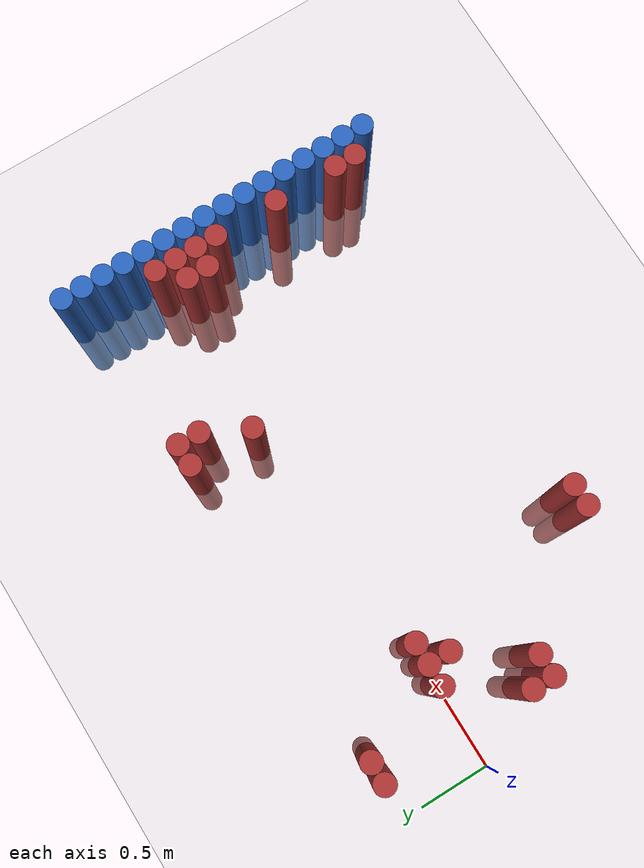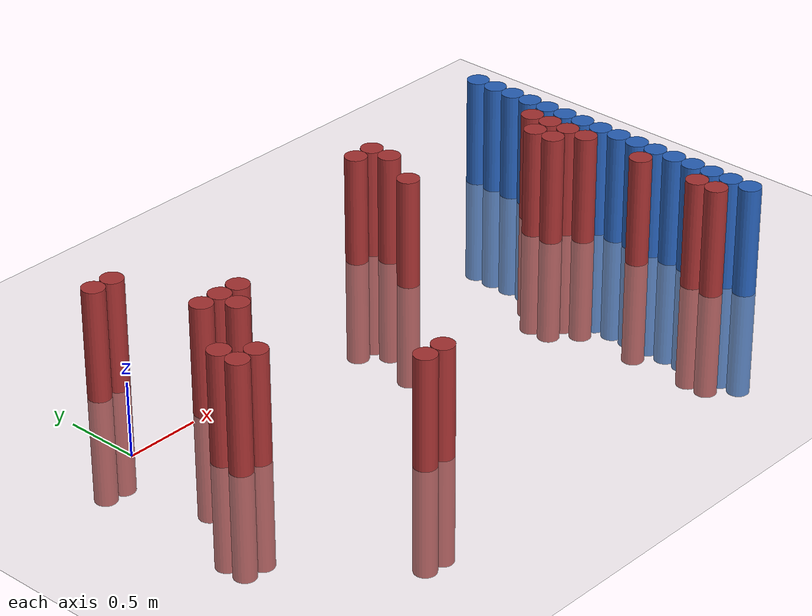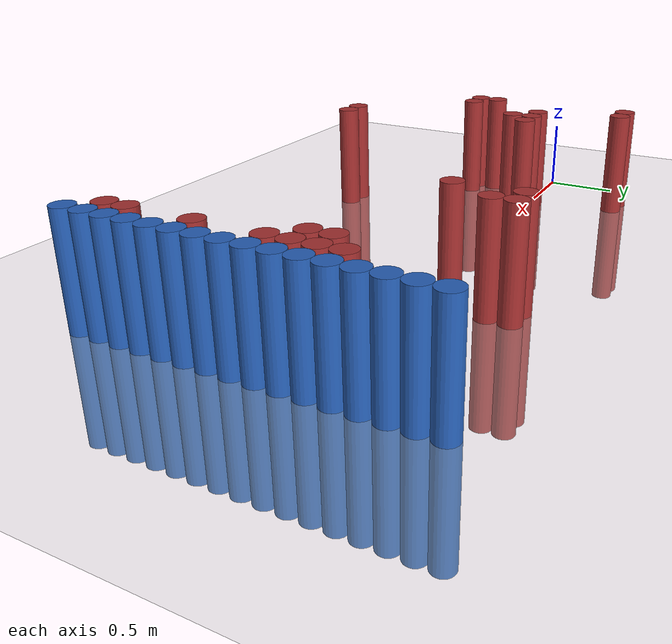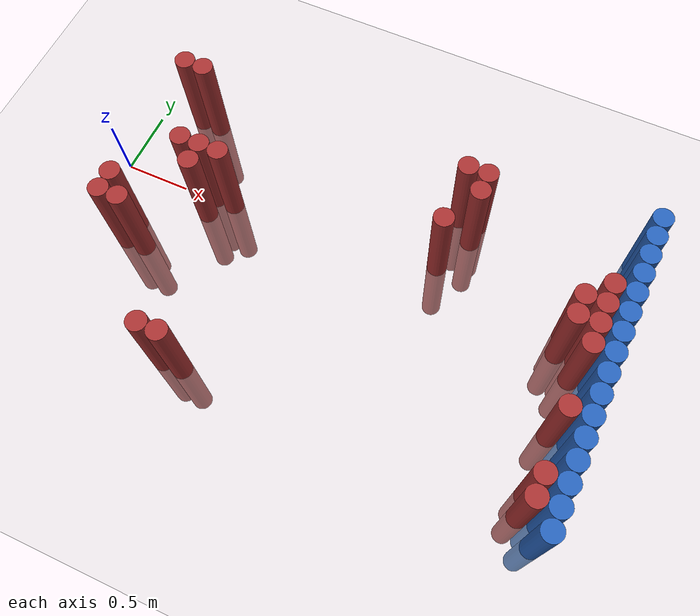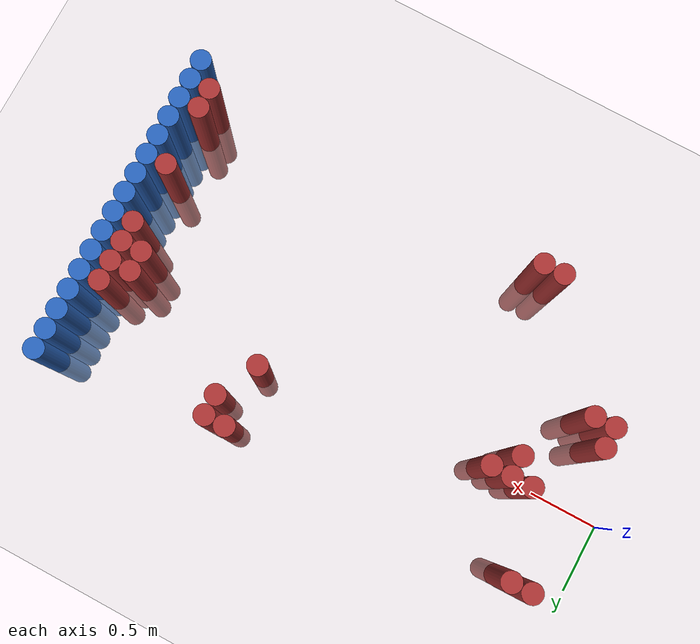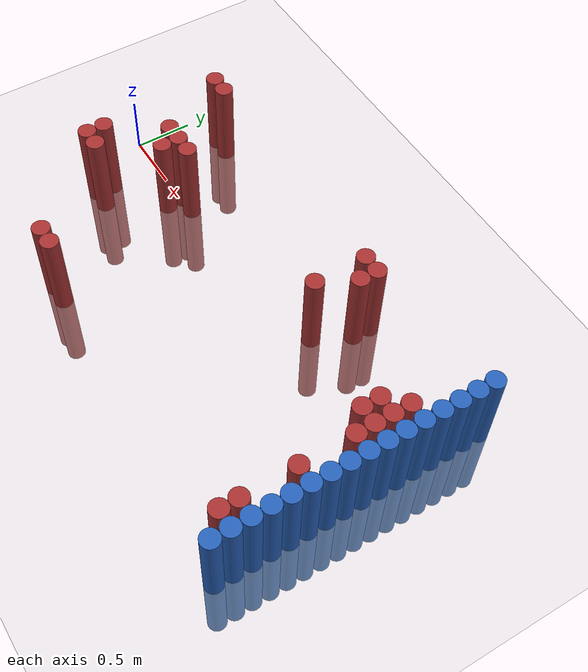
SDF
<sdf version="1.6">
 <world name="default">
  <model name="ground_plane">
   <static>1</static>
   <link name="link">
    <collision name="collision">
     <geometry><plane><normal>0 0 1</normal><size>100 100</size></plane></geometry>
     <surface><friction><ode><mu>100</mu><mu2>50</mu2></ode></friction></surface>
    </collision>
    <visual name="visual">
     <cast_shadows>0</cast_shadows>
     <geometry><plane><normal>0 0 1</normal><size>100 100</size></plane></geometry>
     <material>
      <script><uri>file://media/materials/scripts/gazebo.material</uri><name>Gazebo/Grey</name></script>
     </material>
    </visual>
   </link>
  </model>
  <model name="unit_cylinder_96">
   <static>1</static>
   <pose>3.925000 -1.325000 0.000000 0.000000 0.000000 0.000000</pose>
   <link name="link">
    <inertial>
     <mass>1</mass>
     <inertia><ixx>0.145833</ixx><ixy>0</ixy><ixz>0</ixz><iyy>0.145833</iyy><iyz>0</iyz><izz>0.125</izz></inertia>
    </inertial>
    <collision name="collision">
     <geometry><cylinder><radius>0.075000</radius><length>1.5</length></cylinder></geometry>
    </collision>
    <visual name="visual">
     <geometry><cylinder><radius>0.075000</radius><length>1.5</length></cylinder></geometry>
     <material>
      <ambient>0.152000 0.379000 0.720000 1</ambient>
      <diffuse>0.152000 0.379000 0.720000 1</diffuse>
     </material>
     <material>
      <script><name>Gazebo/Grey</name><uri>file://media/materials/scripts/gazebo.material</uri></script>
     </material>
    </visual>
   </link>
  </model>
  <model name="unit_cylinder_98">
   <static>1</static>
   <pose>3.925000 -1.175000 0.000000 0.000000 0.000000 0.000000</pose>
   <link name="link">
    <inertial>
     <mass>1</mass>
     <inertia><ixx>0.145833</ixx><ixy>0</ixy><ixz>0</ixz><iyy>0.145833</iyy><iyz>0</iyz><izz>0.125</izz></inertia>
    </inertial>
    <collision name="collision">
     <geometry><cylinder><radius>0.075000</radius><length>1.5</length></cylinder></geometry>
    </collision>
    <visual name="visual">
     <geometry><cylinder><radius>0.075000</radius><length>1.5</length></cylinder></geometry>
     <material>
      <ambient>0.152000 0.379000 0.720000 1</ambient>
      <diffuse>0.152000 0.379000 0.720000 1</diffuse>
     </material>
     <material>
      <script><name>Gazebo/Grey</name><uri>file://media/materials/scripts/gazebo.material</uri></script>
     </material>
    </visual>
   </link>
  </model>
  <model name="unit_cylinder_100">
   <static>1</static>
   <pose>3.925000 -1.025000 0.000000 0.000000 0.000000 0.000000</pose>
   <link name="link">
    <inertial>
     <mass>1</mass>
     <inertia><ixx>0.145833</ixx><ixy>0</ixy><ixz>0</ixz><iyy>0.145833</iyy><iyz>0</iyz><izz>0.125</izz></inertia>
    </inertial>
    <collision name="collision">
     <geometry><cylinder><radius>0.075000</radius><length>1.5</length></cylinder></geometry>
    </collision>
    <visual name="visual">
     <geometry><cylinder><radius>0.075000</radius><length>1.5</length></cylinder></geometry>
     <material>
      <ambient>0.152000 0.379000 0.720000 1</ambient>
      <diffuse>0.152000 0.379000 0.720000 1</diffuse>
     </material>
     <material>
      <script><name>Gazebo/Grey</name><uri>file://media/materials/scripts/gazebo.material</uri></script>
     </material>
    </visual>
   </link>
  </model>
  <model name="unit_cylinder_102">
   <static>1</static>
   <pose>3.925000 -0.875000 0.000000 0.000000 0.000000 0.000000</pose>
   <link name="link">
    <inertial>
     <mass>1</mass>
     <inertia><ixx>0.145833</ixx><ixy>0</ixy><ixz>0</ixz><iyy>0.145833</iyy><iyz>0</iyz><izz>0.125</izz></inertia>
    </inertial>
    <collision name="collision">
     <geometry><cylinder><radius>0.075000</radius><length>1.5</length></cylinder></geometry>
    </collision>
    <visual name="visual">
     <geometry><cylinder><radius>0.075000</radius><length>1.5</length></cylinder></geometry>
     <material>
      <ambient>0.152000 0.379000 0.720000 1</ambient>
      <diffuse>0.152000 0.379000 0.720000 1</diffuse>
     </material>
     <material>
      <script><name>Gazebo/Grey</name><uri>file://media/materials/scripts/gazebo.material</uri></script>
     </material>
    </visual>
   </link>
  </model>
  <model name="unit_cylinder_104">
   <static>1</static>
   <pose>3.925000 -0.725000 0.000000 0.000000 0.000000 0.000000</pose>
   <link name="link">
    <inertial>
     <mass>1</mass>
     <inertia><ixx>0.145833</ixx><ixy>0</ixy><ixz>0</ixz><iyy>0.145833</iyy><iyz>0</iyz><izz>0.125</izz></inertia>
    </inertial>
    <collision name="collision">
     <geometry><cylinder><radius>0.075000</radius><length>1.5</length></cylinder></geometry>
    </collision>
    <visual name="visual">
     <geometry><cylinder><radius>0.075000</radius><length>1.5</length></cylinder></geometry>
     <material>
      <ambient>0.152000 0.379000 0.720000 1</ambient>
      <diffuse>0.152000 0.379000 0.720000 1</diffuse>
     </material>
     <material>
      <script><name>Gazebo/Grey</name><uri>file://media/materials/scripts/gazebo.material</uri></script>
     </material>
    </visual>
   </link>
  </model>
  <model name="unit_cylinder_106">
   <static>1</static>
   <pose>3.925000 -0.575000 0.000000 0.000000 0.000000 0.000000</pose>
   <link name="link">
    <inertial>
     <mass>1</mass>
     <inertia><ixx>0.145833</ixx><ixy>0</ixy><ixz>0</ixz><iyy>0.145833</iyy><iyz>0</iyz><izz>0.125</izz></inertia>
    </inertial>
    <collision name="collision">
     <geometry><cylinder><radius>0.075000</radius><length>1.5</length></cylinder></geometry>
    </collision>
    <visual name="visual">
     <geometry><cylinder><radius>0.075000</radius><length>1.5</length></cylinder></geometry>
     <material>
      <ambient>0.152000 0.379000 0.720000 1</ambient>
      <diffuse>0.152000 0.379000 0.720000 1</diffuse>
     </material>
     <material>
      <script><name>Gazebo/Grey</name><uri>file://media/materials/scripts/gazebo.material</uri></script>
     </material>
    </visual>
   </link>
  </model>
  <model name="unit_cylinder_108">
   <static>1</static>
   <pose>3.925000 -0.425000 0.000000 0.000000 0.000000 0.000000</pose>
   <link name="link">
    <inertial>
     <mass>1</mass>
     <inertia><ixx>0.145833</ixx><ixy>0</ixy><ixz>0</ixz><iyy>0.145833</iyy><iyz>0</iyz><izz>0.125</izz></inertia>
    </inertial>
    <collision name="collision">
     <geometry><cylinder><radius>0.075000</radius><length>1.5</length></cylinder></geometry>
    </collision>
    <visual name="visual">
     <geometry><cylinder><radius>0.075000</radius><length>1.5</length></cylinder></geometry>
     <material>
      <ambient>0.152000 0.379000 0.720000 1</ambient>
      <diffuse>0.152000 0.379000 0.720000 1</diffuse>
     </material>
     <material>
      <script><name>Gazebo/Grey</name><uri>file://media/materials/scripts/gazebo.material</uri></script>
     </material>
    </visual>
   </link>
  </model>
  <model name="unit_cylinder_110">
   <static>1</static>
   <pose>3.925000 -0.275000 0.000000 0.000000 0.000000 0.000000</pose>
   <link name="link">
    <inertial>
     <mass>1</mass>
     <inertia><ixx>0.145833</ixx><ixy>0</ixy><ixz>0</ixz><iyy>0.145833</iyy><iyz>0</iyz><izz>0.125</izz></inertia>
    </inertial>
    <collision name="collision">
     <geometry><cylinder><radius>0.075000</radius><length>1.5</length></cylinder></geometry>
    </collision>
    <visual name="visual">
     <geometry><cylinder><radius>0.075000</radius><length>1.5</length></cylinder></geometry>
     <material>
      <ambient>0.152000 0.379000 0.720000 1</ambient>
      <diffuse>0.152000 0.379000 0.720000 1</diffuse>
     </material>
     <material>
      <script><name>Gazebo/Grey</name><uri>file://media/materials/scripts/gazebo.material</uri></script>
     </material>
    </visual>
   </link>
  </model>
  <model name="unit_cylinder_112">
   <static>1</static>
   <pose>3.925000 -0.125000 0.000000 0.000000 0.000000 0.000000</pose>
   <link name="link">
    <inertial>
     <mass>1</mass>
     <inertia><ixx>0.145833</ixx><ixy>0</ixy><ixz>0</ixz><iyy>0.145833</iyy><iyz>0</iyz><izz>0.125</izz></inertia>
    </inertial>
    <collision name="collision">
     <geometry><cylinder><radius>0.075000</radius><length>1.5</length></cylinder></geometry>
    </collision>
    <visual name="visual">
     <geometry><cylinder><radius>0.075000</radius><length>1.5</length></cylinder></geometry>
     <material>
      <ambient>0.152000 0.379000 0.720000 1</ambient>
      <diffuse>0.152000 0.379000 0.720000 1</diffuse>
     </material>
     <material>
      <script><name>Gazebo/Grey</name><uri>file://media/materials/scripts/gazebo.material</uri></script>
     </material>
    </visual>
   </link>
  </model>
  <model name="unit_cylinder_114">
   <static>1</static>
   <pose>3.925000 0.025000 0.000000 0.000000 0.000000 0.000000</pose>
   <link name="link">
    <inertial>
     <mass>1</mass>
     <inertia><ixx>0.145833</ixx><ixy>0</ixy><ixz>0</ixz><iyy>0.145833</iyy><iyz>0</iyz><izz>0.125</izz></inertia>
    </inertial>
    <collision name="collision">
     <geometry><cylinder><radius>0.075000</radius><length>1.5</length></cylinder></geometry>
    </collision>
    <visual name="visual">
     <geometry><cylinder><radius>0.075000</radius><length>1.5</length></cylinder></geometry>
     <material>
      <ambient>0.152000 0.379000 0.720000 1</ambient>
      <diffuse>0.152000 0.379000 0.720000 1</diffuse>
     </material>
     <material>
      <script><name>Gazebo/Grey</name><uri>file://media/materials/scripts/gazebo.material</uri></script>
     </material>
    </visual>
   </link>
  </model>
  <model name="unit_cylinder_116">
   <static>1</static>
   <pose>3.925000 0.175000 0.000000 0.000000 0.000000 0.000000</pose>
   <link name="link">
    <inertial>
     <mass>1</mass>
     <inertia><ixx>0.145833</ixx><ixy>0</ixy><ixz>0</ixz><iyy>0.145833</iyy><iyz>0</iyz><izz>0.125</izz></inertia>
    </inertial>
    <collision name="collision">
     <geometry><cylinder><radius>0.075000</radius><length>1.5</length></cylinder></geometry>
    </collision>
    <visual name="visual">
     <geometry><cylinder><radius>0.075000</radius><length>1.5</length></cylinder></geometry>
     <material>
      <ambient>0.152000 0.379000 0.720000 1</ambient>
      <diffuse>0.152000 0.379000 0.720000 1</diffuse>
     </material>
     <material>
      <script><name>Gazebo/Grey</name><uri>file://media/materials/scripts/gazebo.material</uri></script>
     </material>
    </visual>
   </link>
  </model>
  <model name="unit_cylinder_118">
   <static>1</static>
   <pose>3.925000 0.325000 0.000000 0.000000 0.000000 0.000000</pose>
   <link name="link">
    <inertial>
     <mass>1</mass>
     <inertia><ixx>0.145833</ixx><ixy>0</ixy><ixz>0</ixz><iyy>0.145833</iyy><iyz>0</iyz><izz>0.125</izz></inertia>
    </inertial>
    <collision name="collision">
     <geometry><cylinder><radius>0.075000</radius><length>1.5</length></cylinder></geometry>
    </collision>
    <visual name="visual">
     <geometry><cylinder><radius>0.075000</radius><length>1.5</length></cylinder></geometry>
     <material>
      <ambient>0.152000 0.379000 0.720000 1</ambient>
      <diffuse>0.152000 0.379000 0.720000 1</diffuse>
     </material>
     <material>
      <script><name>Gazebo/Grey</name><uri>file://media/materials/scripts/gazebo.material</uri></script>
     </material>
    </visual>
   </link>
  </model>
  <model name="unit_cylinder_120">
   <static>1</static>
   <pose>3.925000 0.475000 0.000000 0.000000 0.000000 0.000000</pose>
   <link name="link">
    <inertial>
     <mass>1</mass>
     <inertia><ixx>0.145833</ixx><ixy>0</ixy><ixz>0</ixz><iyy>0.145833</iyy><iyz>0</iyz><izz>0.125</izz></inertia>
    </inertial>
    <collision name="collision">
     <geometry><cylinder><radius>0.075000</radius><length>1.5</length></cylinder></geometry>
    </collision>
    <visual name="visual">
     <geometry><cylinder><radius>0.075000</radius><length>1.5</length></cylinder></geometry>
     <material>
      <ambient>0.152000 0.379000 0.720000 1</ambient>
      <diffuse>0.152000 0.379000 0.720000 1</diffuse>
     </material>
     <material>
      <script><name>Gazebo/Grey</name><uri>file://media/materials/scripts/gazebo.material</uri></script>
     </material>
    </visual>
   </link>
  </model>
  <model name="unit_cylinder_122">
   <static>1</static>
   <pose>3.925000 0.625000 0.000000 0.000000 0.000000 0.000000</pose>
   <link name="link">
    <inertial>
     <mass>1</mass>
     <inertia><ixx>0.145833</ixx><ixy>0</ixy><ixz>0</ixz><iyy>0.145833</iyy><iyz>0</iyz><izz>0.125</izz></inertia>
    </inertial>
    <collision name="collision">
     <geometry><cylinder><radius>0.075000</radius><length>1.5</length></cylinder></geometry>
    </collision>
    <visual name="visual">
     <geometry><cylinder><radius>0.075000</radius><length>1.5</length></cylinder></geometry>
     <material>
      <ambient>0.152000 0.379000 0.720000 1</ambient>
      <diffuse>0.152000 0.379000 0.720000 1</diffuse>
     </material>
     <material>
      <script><name>Gazebo/Grey</name><uri>file://media/materials/scripts/gazebo.material</uri></script>
     </material>
    </visual>
   </link>
  </model>
  <model name="unit_cylinder_124">
   <static>1</static>
   <pose>3.925000 0.775000 0.000000 0.000000 0.000000 0.000000</pose>
   <link name="link">
    <inertial>
     <mass>1</mass>
     <inertia><ixx>0.145833</ixx><ixy>0</ixy><ixz>0</ixz><iyy>0.145833</iyy><iyz>0</iyz><izz>0.125</izz></inertia>
    </inertial>
    <collision name="collision">
     <geometry><cylinder><radius>0.075000</radius><length>1.5</length></cylinder></geometry>
    </collision>
    <visual name="visual">
     <geometry><cylinder><radius>0.075000</radius><length>1.5</length></cylinder></geometry>
     <material>
      <ambient>0.152000 0.379000 0.720000 1</ambient>
      <diffuse>0.152000 0.379000 0.720000 1</diffuse>
     </material>
     <material>
      <script><name>Gazebo/Grey</name><uri>file://media/materials/scripts/gazebo.material</uri></script>
     </material>
    </visual>
   </link>
  </model>
  <model name="unit_cylinder_344">
   <static>1</static>
   <pose>0.325000 -0.575000 0.000000 0.000000 0.000000 0.000000</pose>
   <link name="link">
    <inertial>
     <mass>1</mass>
     <inertia><ixx>0.145833</ixx><ixy>0</ixy><ixz>0</ixz><iyy>0.145833</iyy><iyz>0</iyz><izz>0.125</izz></inertia>
    </inertial>
    <collision name="collision">
     <geometry><cylinder><radius>0.075000</radius><length>1.5</length></cylinder></geometry>
    </collision>
    <visual name="visual">
     <geometry><cylinder><radius>0.075000</radius><length>1.5</length></cylinder></geometry>
     <material>
      <ambient>0.648000 0.192000 0.192000 1</ambient>
      <diffuse>0.648000 0.192000 0.192000 1</diffuse>
     </material>
     <material>
      <script><name>Gazebo/Grey</name><uri>file://media/materials/scripts/gazebo.material</uri></script>
     </material>
    </visual>
   </link>
  </model>
  <model name="unit_cylinder_345">
   <static>1</static>
   <pose>0.325000 -0.425000 0.000000 0.000000 0.000000 0.000000</pose>
   <link name="link">
    <inertial>
     <mass>1</mass>
     <inertia><ixx>0.145833</ixx><ixy>0</ixy><ixz>0</ixz><iyy>0.145833</iyy><iyz>0</iyz><izz>0.125</izz></inertia>
    </inertial>
    <collision name="collision">
     <geometry><cylinder><radius>0.075000</radius><length>1.5</length></cylinder></geometry>
    </collision>
    <visual name="visual">
     <geometry><cylinder><radius>0.075000</radius><length>1.5</length></cylinder></geometry>
     <material>
      <ambient>0.648000 0.192000 0.192000 1</ambient>
      <diffuse>0.648000 0.192000 0.192000 1</diffuse>
     </material>
     <material>
      <script><name>Gazebo/Grey</name><uri>file://media/materials/scripts/gazebo.material</uri></script>
     </material>
    </visual>
   </link>
  </model>
  <model name="unit_cylinder_346">
   <static>1</static>
   <pose>0.325000 0.625000 0.000000 0.000000 0.000000 0.000000</pose>
   <link name="link">
    <inertial>
     <mass>1</mass>
     <inertia><ixx>0.145833</ixx><ixy>0</ixy><ixz>0</ixz><iyy>0.145833</iyy><iyz>0</iyz><izz>0.125</izz></inertia>
    </inertial>
    <collision name="collision">
     <geometry><cylinder><radius>0.075000</radius><length>1.5</length></cylinder></geometry>
    </collision>
    <visual name="visual">
     <geometry><cylinder><radius>0.075000</radius><length>1.5</length></cylinder></geometry>
     <material>
      <ambient>0.648000 0.192000 0.192000 1</ambient>
      <diffuse>0.648000 0.192000 0.192000 1</diffuse>
     </material>
     <material>
      <script><name>Gazebo/Grey</name><uri>file://media/materials/scripts/gazebo.material</uri></script>
     </material>
    </visual>
   </link>
  </model>
  <model name="unit_cylinder_348">
   <static>1</static>
   <pose>0.475000 -0.575000 0.000000 0.000000 0.000000 0.000000</pose>
   <link name="link">
    <inertial>
     <mass>1</mass>
     <inertia><ixx>0.145833</ixx><ixy>0</ixy><ixz>0</ixz><iyy>0.145833</iyy><iyz>0</iyz><izz>0.125</izz></inertia>
    </inertial>
    <collision name="collision">
     <geometry><cylinder><radius>0.075000</radius><length>1.5</length></cylinder></geometry>
    </collision>
    <visual name="visual">
     <geometry><cylinder><radius>0.075000</radius><length>1.5</length></cylinder></geometry>
     <material>
      <ambient>0.648000 0.192000 0.192000 1</ambient>
      <diffuse>0.648000 0.192000 0.192000 1</diffuse>
     </material>
     <material>
      <script><name>Gazebo/Grey</name><uri>file://media/materials/scripts/gazebo.material</uri></script>
     </material>
    </visual>
   </link>
  </model>
  <model name="unit_cylinder_349">
   <static>1</static>
   <pose>0.475000 0.625000 0.000000 0.000000 0.000000 0.000000</pose>
   <link name="link">
    <inertial>
     <mass>1</mass>
     <inertia><ixx>0.145833</ixx><ixy>0</ixy><ixz>0</ixz><iyy>0.145833</iyy><iyz>0</iyz><izz>0.125</izz></inertia>
    </inertial>
    <collision name="collision">
     <geometry><cylinder><radius>0.075000</radius><length>1.5</length></cylinder></geometry>
    </collision>
    <visual name="visual">
     <geometry><cylinder><radius>0.075000</radius><length>1.5</length></cylinder></geometry>
     <material>
      <ambient>0.648000 0.192000 0.192000 1</ambient>
      <diffuse>0.648000 0.192000 0.192000 1</diffuse>
     </material>
     <material>
      <script><name>Gazebo/Grey</name><uri>file://media/materials/scripts/gazebo.material</uri></script>
     </material>
    </visual>
   </link>
  </model>
  <model name="unit_cylinder_351">
   <static>1</static>
   <pose>0.625000 0.025000 0.000000 0.000000 0.000000 0.000000</pose>
   <link name="link">
    <inertial>
     <mass>1</mass>
     <inertia><ixx>0.145833</ixx><ixy>0</ixy><ixz>0</ixz><iyy>0.145833</iyy><iyz>0</iyz><izz>0.125</izz></inertia>
    </inertial>
    <collision name="collision">
     <geometry><cylinder><radius>0.075000</radius><length>1.5</length></cylinder></geometry>
    </collision>
    <visual name="visual">
     <geometry><cylinder><radius>0.075000</radius><length>1.5</length></cylinder></geometry>
     <material>
      <ambient>0.648000 0.192000 0.192000 1</ambient>
      <diffuse>0.648000 0.192000 0.192000 1</diffuse>
     </material>
     <material>
      <script><name>Gazebo/Grey</name><uri>file://media/materials/scripts/gazebo.material</uri></script>
     </material>
    </visual>
   </link>
  </model>
  <model name="unit_cylinder_356">
   <static>1</static>
   <pose>0.775000 -0.125000 0.000000 0.000000 0.000000 0.000000</pose>
   <link name="link">
    <inertial>
     <mass>1</mass>
     <inertia><ixx>0.145833</ixx><ixy>0</ixy><ixz>0</ixz><iyy>0.145833</iyy><iyz>0</iyz><izz>0.125</izz></inertia>
    </inertial>
    <collision name="collision">
     <geometry><cylinder><radius>0.075000</radius><length>1.5</length></cylinder></geometry>
    </collision>
    <visual name="visual">
     <geometry><cylinder><radius>0.075000</radius><length>1.5</length></cylinder></geometry>
     <material>
      <ambient>0.648000 0.192000 0.192000 1</ambient>
      <diffuse>0.648000 0.192000 0.192000 1</diffuse>
     </material>
     <material>
      <script><name>Gazebo/Grey</name><uri>file://media/materials/scripts/gazebo.material</uri></script>
     </material>
    </visual>
   </link>
  </model>
  <model name="unit_cylinder_357">
   <static>1</static>
   <pose>0.775000 0.025000 0.000000 0.000000 0.000000 0.000000</pose>
   <link name="link">
    <inertial>
     <mass>1</mass>
     <inertia><ixx>0.145833</ixx><ixy>0</ixy><ixz>0</ixz><iyy>0.145833</iyy><iyz>0</iyz><izz>0.125</izz></inertia>
    </inertial>
    <collision name="collision">
     <geometry><cylinder><radius>0.075000</radius><length>1.5</length></cylinder></geometry>
    </collision>
    <visual name="visual">
     <geometry><cylinder><radius>0.075000</radius><length>1.5</length></cylinder></geometry>
     <material>
      <ambient>0.648000 0.192000 0.192000 1</ambient>
      <diffuse>0.648000 0.192000 0.192000 1</diffuse>
     </material>
     <material>
      <script><name>Gazebo/Grey</name><uri>file://media/materials/scripts/gazebo.material</uri></script>
     </material>
    </visual>
   </link>
  </model>
  <model name="unit_cylinder_362">
   <static>1</static>
   <pose>0.925000 0.025000 0.000000 0.000000 0.000000 0.000000</pose>
   <link name="link">
    <inertial>
     <mass>1</mass>
     <inertia><ixx>0.145833</ixx><ixy>0</ixy><ixz>0</ixz><iyy>0.145833</iyy><iyz>0</iyz><izz>0.125</izz></inertia>
    </inertial>
    <collision name="collision">
     <geometry><cylinder><radius>0.075000</radius><length>1.5</length></cylinder></geometry>
    </collision>
    <visual name="visual">
     <geometry><cylinder><radius>0.075000</radius><length>1.5</length></cylinder></geometry>
     <material>
      <ambient>0.648000 0.192000 0.192000 1</ambient>
      <diffuse>0.648000 0.192000 0.192000 1</diffuse>
     </material>
     <material>
      <script><name>Gazebo/Grey</name><uri>file://media/materials/scripts/gazebo.material</uri></script>
     </material>
    </visual>
   </link>
  </model>
  <model name="unit_cylinder_367">
   <static>1</static>
   <pose>1.075000 -1.325000 0.000000 0.000000 0.000000 0.000000</pose>
   <link name="link">
    <inertial>
     <mass>1</mass>
     <inertia><ixx>0.145833</ixx><ixy>0</ixy><ixz>0</ixz><iyy>0.145833</iyy><iyz>0</iyz><izz>0.125</izz></inertia>
    </inertial>
    <collision name="collision">
     <geometry><cylinder><radius>0.075000</radius><length>1.5</length></cylinder></geometry>
    </collision>
    <visual name="visual">
     <geometry><cylinder><radius>0.075000</radius><length>1.5</length></cylinder></geometry>
     <material>
      <ambient>0.648000 0.192000 0.192000 1</ambient>
      <diffuse>0.648000 0.192000 0.192000 1</diffuse>
     </material>
     <material>
      <script><name>Gazebo/Grey</name><uri>file://media/materials/scripts/gazebo.material</uri></script>
     </material>
    </visual>
   </link>
  </model>
  <model name="unit_cylinder_369">
   <static>1</static>
   <pose>1.225000 -1.325000 0.000000 0.000000 0.000000 0.000000</pose>
   <link name="link">
    <inertial>
     <mass>1</mass>
     <inertia><ixx>0.145833</ixx><ixy>0</ixy><ixz>0</ixz><iyy>0.145833</iyy><iyz>0</iyz><izz>0.125</izz></inertia>
    </inertial>
    <collision name="collision">
     <geometry><cylinder><radius>0.075000</radius><length>1.5</length></cylinder></geometry>
    </collision>
    <visual name="visual">
     <geometry><cylinder><radius>0.075000</radius><length>1.5</length></cylinder></geometry>
     <material>
      <ambient>0.648000 0.192000 0.192000 1</ambient>
      <diffuse>0.648000 0.192000 0.192000 1</diffuse>
     </material>
     <material>
      <script><name>Gazebo/Grey</name><uri>file://media/materials/scripts/gazebo.material</uri></script>
     </material>
    </visual>
   </link>
  </model>
  <model name="unit_cylinder_392">
   <static>1</static>
   <pose>2.575000 0.175000 0.000000 0.000000 0.000000 0.000000</pose>
   <link name="link">
    <inertial>
     <mass>1</mass>
     <inertia><ixx>0.145833</ixx><ixy>0</ixy><ixz>0</ixz><iyy>0.145833</iyy><iyz>0</iyz><izz>0.125</izz></inertia>
    </inertial>
    <collision name="collision">
     <geometry><cylinder><radius>0.075000</radius><length>1.5</length></cylinder></geometry>
    </collision>
    <visual name="visual">
     <geometry><cylinder><radius>0.075000</radius><length>1.5</length></cylinder></geometry>
     <material>
      <ambient>0.648000 0.192000 0.192000 1</ambient>
      <diffuse>0.648000 0.192000 0.192000 1</diffuse>
     </material>
     <material>
      <script><name>Gazebo/Grey</name><uri>file://media/materials/scripts/gazebo.material</uri></script>
     </material>
    </visual>
   </link>
  </model>
  <model name="unit_cylinder_393">
   <static>1</static>
   <pose>2.575000 0.625000 0.000000 0.000000 0.000000 0.000000</pose>
   <link name="link">
    <inertial>
     <mass>1</mass>
     <inertia><ixx>0.145833</ixx><ixy>0</ixy><ixz>0</ixz><iyy>0.145833</iyy><iyz>0</iyz><izz>0.125</izz></inertia>
    </inertial>
    <collision name="collision">
     <geometry><cylinder><radius>0.075000</radius><length>1.5</length></cylinder></geometry>
    </collision>
    <visual name="visual">
     <geometry><cylinder><radius>0.075000</radius><length>1.5</length></cylinder></geometry>
     <material>
      <ambient>0.648000 0.192000 0.192000 1</ambient>
      <diffuse>0.648000 0.192000 0.192000 1</diffuse>
     </material>
     <material>
      <script><name>Gazebo/Grey</name><uri>file://media/materials/scripts/gazebo.material</uri></script>
     </material>
    </visual>
   </link>
  </model>
  <model name="unit_cylinder_395">
   <static>1</static>
   <pose>2.725000 0.475000 0.000000 0.000000 0.000000 0.000000</pose>
   <link name="link">
    <inertial>
     <mass>1</mass>
     <inertia><ixx>0.145833</ixx><ixy>0</ixy><ixz>0</ixz><iyy>0.145833</iyy><iyz>0</iyz><izz>0.125</izz></inertia>
    </inertial>
    <collision name="collision">
     <geometry><cylinder><radius>0.075000</radius><length>1.5</length></cylinder></geometry>
    </collision>
    <visual name="visual">
     <geometry><cylinder><radius>0.075000</radius><length>1.5</length></cylinder></geometry>
     <material>
      <ambient>0.648000 0.192000 0.192000 1</ambient>
      <diffuse>0.648000 0.192000 0.192000 1</diffuse>
     </material>
     <material>
      <script><name>Gazebo/Grey</name><uri>file://media/materials/scripts/gazebo.material</uri></script>
     </material>
    </visual>
   </link>
  </model>
  <model name="unit_cylinder_396">
   <static>1</static>
   <pose>2.725000 0.625000 0.000000 0.000000 0.000000 0.000000</pose>
   <link name="link">
    <inertial>
     <mass>1</mass>
     <inertia><ixx>0.145833</ixx><ixy>0</ixy><ixz>0</ixz><iyy>0.145833</iyy><iyz>0</iyz><izz>0.125</izz></inertia>
    </inertial>
    <collision name="collision">
     <geometry><cylinder><radius>0.075000</radius><length>1.5</length></cylinder></geometry>
    </collision>
    <visual name="visual">
     <geometry><cylinder><radius>0.075000</radius><length>1.5</length></cylinder></geometry>
     <material>
      <ambient>0.648000 0.192000 0.192000 1</ambient>
      <diffuse>0.648000 0.192000 0.192000 1</diffuse>
     </material>
     <material>
      <script><name>Gazebo/Grey</name><uri>file://media/materials/scripts/gazebo.material</uri></script>
     </material>
    </visual>
   </link>
  </model>
  <model name="unit_cylinder_416">
   <static>1</static>
   <pose>3.625000 -0.125000 0.000000 0.000000 0.000000 0.000000</pose>
   <link name="link">
    <inertial>
     <mass>1</mass>
     <inertia><ixx>0.145833</ixx><ixy>0</ixy><ixz>0</ixz><iyy>0.145833</iyy><iyz>0</iyz><izz>0.125</izz></inertia>
    </inertial>
    <collision name="collision">
     <geometry><cylinder><radius>0.075000</radius><length>1.5</length></cylinder></geometry>
    </collision>
    <visual name="visual">
     <geometry><cylinder><radius>0.075000</radius><length>1.5</length></cylinder></geometry>
     <material>
      <ambient>0.648000 0.192000 0.192000 1</ambient>
      <diffuse>0.648000 0.192000 0.192000 1</diffuse>
     </material>
     <material>
      <script><name>Gazebo/Grey</name><uri>file://media/materials/scripts/gazebo.material</uri></script>
     </material>
    </visual>
   </link>
  </model>
  <model name="unit_cylinder_417">
   <static>1</static>
   <pose>3.625000 0.025000 0.000000 0.000000 0.000000 0.000000</pose>
   <link name="link">
    <inertial>
     <mass>1</mass>
     <inertia><ixx>0.145833</ixx><ixy>0</ixy><ixz>0</ixz><iyy>0.145833</iyy><iyz>0</iyz><izz>0.125</izz></inertia>
    </inertial>
    <collision name="collision">
     <geometry><cylinder><radius>0.075000</radius><length>1.5</length></cylinder></geometry>
    </collision>
    <visual name="visual">
     <geometry><cylinder><radius>0.075000</radius><length>1.5</length></cylinder></geometry>
     <material>
      <ambient>0.648000 0.192000 0.192000 1</ambient>
      <diffuse>0.648000 0.192000 0.192000 1</diffuse>
     </material>
     <material>
      <script><name>Gazebo/Grey</name><uri>file://media/materials/scripts/gazebo.material</uri></script>
     </material>
    </visual>
   </link>
  </model>
  <model name="unit_cylinder_425">
   <static>1</static>
   <pose>3.775000 -1.325000 0.000000 0.000000 0.000000 0.000000</pose>
   <link name="link">
    <inertial>
     <mass>1</mass>
     <inertia><ixx>0.145833</ixx><ixy>0</ixy><ixz>0</ixz><iyy>0.145833</iyy><iyz>0</iyz><izz>0.125</izz></inertia>
    </inertial>
    <collision name="collision">
     <geometry><cylinder><radius>0.075000</radius><length>1.5</length></cylinder></geometry>
    </collision>
    <visual name="visual">
     <geometry><cylinder><radius>0.075000</radius><length>1.5</length></cylinder></geometry>
     <material>
      <ambient>0.648000 0.192000 0.192000 1</ambient>
      <diffuse>0.648000 0.192000 0.192000 1</diffuse>
     </material>
     <material>
      <script><name>Gazebo/Grey</name><uri>file://media/materials/scripts/gazebo.material</uri></script>
     </material>
    </visual>
   </link>
  </model>
  <model name="unit_cylinder_426">
   <static>1</static>
   <pose>3.775000 -1.175000 0.000000 0.000000 0.000000 0.000000</pose>
   <link name="link">
    <inertial>
     <mass>1</mass>
     <inertia><ixx>0.145833</ixx><ixy>0</ixy><ixz>0</ixz><iyy>0.145833</iyy><iyz>0</iyz><izz>0.125</izz></inertia>
    </inertial>
    <collision name="collision">
     <geometry><cylinder><radius>0.075000</radius><length>1.5</length></cylinder></geometry>
    </collision>
    <visual name="visual">
     <geometry><cylinder><radius>0.075000</radius><length>1.5</length></cylinder></geometry>
     <material>
      <ambient>0.648000 0.192000 0.192000 1</ambient>
      <diffuse>0.648000 0.192000 0.192000 1</diffuse>
     </material>
     <material>
      <script><name>Gazebo/Grey</name><uri>file://media/materials/scripts/gazebo.material</uri></script>
     </material>
    </visual>
   </link>
  </model>
  <model name="unit_cylinder_427">
   <static>1</static>
   <pose>3.775000 -0.725000 0.000000 0.000000 0.000000 0.000000</pose>
   <link name="link">
    <inertial>
     <mass>1</mass>
     <inertia><ixx>0.145833</ixx><ixy>0</ixy><ixz>0</ixz><iyy>0.145833</iyy><iyz>0</iyz><izz>0.125</izz></inertia>
    </inertial>
    <collision name="collision">
     <geometry><cylinder><radius>0.075000</radius><length>1.5</length></cylinder></geometry>
    </collision>
    <visual name="visual">
     <geometry><cylinder><radius>0.075000</radius><length>1.5</length></cylinder></geometry>
     <material>
      <ambient>0.648000 0.192000 0.192000 1</ambient>
      <diffuse>0.648000 0.192000 0.192000 1</diffuse>
     </material>
     <material>
      <script><name>Gazebo/Grey</name><uri>file://media/materials/scripts/gazebo.material</uri></script>
     </material>
    </visual>
   </link>
  </model>
  <model name="unit_cylinder_428">
   <static>1</static>
   <pose>3.775000 -0.275000 0.000000 0.000000 0.000000 0.000000</pose>
   <link name="link">
    <inertial>
     <mass>1</mass>
     <inertia><ixx>0.145833</ixx><ixy>0</ixy><ixz>0</ixz><iyy>0.145833</iyy><iyz>0</iyz><izz>0.125</izz></inertia>
    </inertial>
    <collision name="collision">
     <geometry><cylinder><radius>0.075000</radius><length>1.5</length></cylinder></geometry>
    </collision>
    <visual name="visual">
     <geometry><cylinder><radius>0.075000</radius><length>1.5</length></cylinder></geometry>
     <material>
      <ambient>0.648000 0.192000 0.192000 1</ambient>
      <diffuse>0.648000 0.192000 0.192000 1</diffuse>
     </material>
     <material>
      <script><name>Gazebo/Grey</name><uri>file://media/materials/scripts/gazebo.material</uri></script>
     </material>
    </visual>
   </link>
  </model>
  <model name="unit_cylinder_429">
   <static>1</static>
   <pose>3.775000 -0.125000 0.000000 0.000000 0.000000 0.000000</pose>
   <link name="link">
    <inertial>
     <mass>1</mass>
     <inertia><ixx>0.145833</ixx><ixy>0</ixy><ixz>0</ixz><iyy>0.145833</iyy><iyz>0</iyz><izz>0.125</izz></inertia>
    </inertial>
    <collision name="collision">
     <geometry><cylinder><radius>0.075000</radius><length>1.5</length></cylinder></geometry>
    </collision>
    <visual name="visual">
     <geometry><cylinder><radius>0.075000</radius><length>1.5</length></cylinder></geometry>
     <material>
      <ambient>0.648000 0.192000 0.192000 1</ambient>
      <diffuse>0.648000 0.192000 0.192000 1</diffuse>
     </material>
     <material>
      <script><name>Gazebo/Grey</name><uri>file://media/materials/scripts/gazebo.material</uri></script>
     </material>
    </visual>
   </link>
  </model>
  <model name="unit_cylinder_430">
   <static>1</static>
   <pose>3.775000 0.025000 0.000000 0.000000 0.000000 0.000000</pose>
   <link name="link">
    <inertial>
     <mass>1</mass>
     <inertia><ixx>0.145833</ixx><ixy>0</ixy><ixz>0</ixz><iyy>0.145833</iyy><iyz>0</iyz><izz>0.125</izz></inertia>
    </inertial>
    <collision name="collision">
     <geometry><cylinder><radius>0.075000</radius><length>1.5</length></cylinder></geometry>
    </collision>
    <visual name="visual">
     <geometry><cylinder><radius>0.075000</radius><length>1.5</length></cylinder></geometry>
     <material>
      <ambient>0.648000 0.192000 0.192000 1</ambient>
      <diffuse>0.648000 0.192000 0.192000 1</diffuse>
     </material>
     <material>
      <script><name>Gazebo/Grey</name><uri>file://media/materials/scripts/gazebo.material</uri></script>
     </material>
    </visual>
   </link>
  </model>
  <model name="unit_cylinder_431">
   <static>1</static>
   <pose>3.775000 0.175000 0.000000 0.000000 0.000000 0.000000</pose>
   <link name="link">
    <inertial>
     <mass>1</mass>
     <inertia><ixx>0.145833</ixx><ixy>0</ixy><ixz>0</ixz><iyy>0.145833</iyy><iyz>0</iyz><izz>0.125</izz></inertia>
    </inertial>
    <collision name="collision">
     <geometry><cylinder><radius>0.075000</radius><length>1.5</length></cylinder></geometry>
    </collision>
    <visual name="visual">
     <geometry><cylinder><radius>0.075000</radius><length>1.5</length></cylinder></geometry>
     <material>
      <ambient>0.648000 0.192000 0.192000 1</ambient>
      <diffuse>0.648000 0.192000 0.192000 1</diffuse>
     </material>
     <material>
      <script><name>Gazebo/Grey</name><uri>file://media/materials/scripts/gazebo.material</uri></script>
     </material>
    </visual>
   </link>
  </model>
  <model name="unit_cylinder_442">
   <static>1</static>
   <pose>3.925000 -1.475000 0.000000 0.000000 0.000000 0.000000</pose>
   <link name="link">
    <inertial>
     <mass>1</mass>
     <inertia><ixx>0.145833</ixx><ixy>0</ixy><ixz>0</ixz><iyy>0.145833</iyy><iyz>0</iyz><izz>0.125</izz></inertia>
    </inertial>
    <collision name="collision">
     <geometry><cylinder><radius>0.075000</radius><length>1.5</length></cylinder></geometry>
    </collision>
    <visual name="visual">
     <geometry><cylinder><radius>0.075000</radius><length>1.5</length></cylinder></geometry>
     <material>
      <ambient>0.152000 0.379000 0.720000 1</ambient>
      <diffuse>0.152000 0.379000 0.720000 1</diffuse>
     </material>
     <material>
      <script><name>Gazebo/Grey</name><uri>file://media/materials/scripts/gazebo.material</uri></script>
     </material>
    </visual>
   </link>
  </model>
  <model name="unit_cylinder_443">
   <static>1</static>
   <pose>3.925000 -1.325000 0.000000 0.000000 0.000000 0.000000</pose>
   <link name="link">
    <inertial>
     <mass>1</mass>
     <inertia><ixx>0.145833</ixx><ixy>0</ixy><ixz>0</ixz><iyy>0.145833</iyy><iyz>0</iyz><izz>0.125</izz></inertia>
    </inertial>
    <collision name="collision">
     <geometry><cylinder><radius>0.075000</radius><length>1.5</length></cylinder></geometry>
    </collision>
    <visual name="visual">
     <geometry><cylinder><radius>0.075000</radius><length>1.5</length></cylinder></geometry>
     <material>
      <ambient>0.152000 0.379000 0.720000 1</ambient>
      <diffuse>0.152000 0.379000 0.720000 1</diffuse>
     </material>
     <material>
      <script><name>Gazebo/Grey</name><uri>file://media/materials/scripts/gazebo.material</uri></script>
     </material>
    </visual>
   </link>
  </model>
  <model name="unit_cylinder_444">
   <static>1</static>
   <pose>3.925000 -1.175000 0.000000 0.000000 0.000000 0.000000</pose>
   <link name="link">
    <inertial>
     <mass>1</mass>
     <inertia><ixx>0.145833</ixx><ixy>0</ixy><ixz>0</ixz><iyy>0.145833</iyy><iyz>0</iyz><izz>0.125</izz></inertia>
    </inertial>
    <collision name="collision">
     <geometry><cylinder><radius>0.075000</radius><length>1.5</length></cylinder></geometry>
    </collision>
    <visual name="visual">
     <geometry><cylinder><radius>0.075000</radius><length>1.5</length></cylinder></geometry>
     <material>
      <ambient>0.152000 0.379000 0.720000 1</ambient>
      <diffuse>0.152000 0.379000 0.720000 1</diffuse>
     </material>
     <material>
      <script><name>Gazebo/Grey</name><uri>file://media/materials/scripts/gazebo.material</uri></script>
     </material>
    </visual>
   </link>
  </model>
  <model name="unit_cylinder_445">
   <static>1</static>
   <pose>3.925000 -1.025000 0.000000 0.000000 0.000000 0.000000</pose>
   <link name="link">
    <inertial>
     <mass>1</mass>
     <inertia><ixx>0.145833</ixx><ixy>0</ixy><ixz>0</ixz><iyy>0.145833</iyy><iyz>0</iyz><izz>0.125</izz></inertia>
    </inertial>
    <collision name="collision">
     <geometry><cylinder><radius>0.075000</radius><length>1.5</length></cylinder></geometry>
    </collision>
    <visual name="visual">
     <geometry><cylinder><radius>0.075000</radius><length>1.5</length></cylinder></geometry>
     <material>
      <ambient>0.152000 0.379000 0.720000 1</ambient>
      <diffuse>0.152000 0.379000 0.720000 1</diffuse>
     </material>
     <material>
      <script><name>Gazebo/Grey</name><uri>file://media/materials/scripts/gazebo.material</uri></script>
     </material>
    </visual>
   </link>
  </model>
  <model name="unit_cylinder_446">
   <static>1</static>
   <pose>3.925000 -0.875000 0.000000 0.000000 0.000000 0.000000</pose>
   <link name="link">
    <inertial>
     <mass>1</mass>
     <inertia><ixx>0.145833</ixx><ixy>0</ixy><ixz>0</ixz><iyy>0.145833</iyy><iyz>0</iyz><izz>0.125</izz></inertia>
    </inertial>
    <collision name="collision">
     <geometry><cylinder><radius>0.075000</radius><length>1.5</length></cylinder></geometry>
    </collision>
    <visual name="visual">
     <geometry><cylinder><radius>0.075000</radius><length>1.5</length></cylinder></geometry>
     <material>
      <ambient>0.152000 0.379000 0.720000 1</ambient>
      <diffuse>0.152000 0.379000 0.720000 1</diffuse>
     </material>
     <material>
      <script><name>Gazebo/Grey</name><uri>file://media/materials/scripts/gazebo.material</uri></script>
     </material>
    </visual>
   </link>
  </model>
  <model name="unit_cylinder_447">
   <static>1</static>
   <pose>3.925000 -0.725000 0.000000 0.000000 0.000000 0.000000</pose>
   <link name="link">
    <inertial>
     <mass>1</mass>
     <inertia><ixx>0.145833</ixx><ixy>0</ixy><ixz>0</ixz><iyy>0.145833</iyy><iyz>0</iyz><izz>0.125</izz></inertia>
    </inertial>
    <collision name="collision">
     <geometry><cylinder><radius>0.075000</radius><length>1.5</length></cylinder></geometry>
    </collision>
    <visual name="visual">
     <geometry><cylinder><radius>0.075000</radius><length>1.5</length></cylinder></geometry>
     <material>
      <ambient>0.152000 0.379000 0.720000 1</ambient>
      <diffuse>0.152000 0.379000 0.720000 1</diffuse>
     </material>
     <material>
      <script><name>Gazebo/Grey</name><uri>file://media/materials/scripts/gazebo.material</uri></script>
     </material>
    </visual>
   </link>
  </model>
  <model name="unit_cylinder_448">
   <static>1</static>
   <pose>3.925000 -0.575000 0.000000 0.000000 0.000000 0.000000</pose>
   <link name="link">
    <inertial>
     <mass>1</mass>
     <inertia><ixx>0.145833</ixx><ixy>0</ixy><ixz>0</ixz><iyy>0.145833</iyy><iyz>0</iyz><izz>0.125</izz></inertia>
    </inertial>
    <collision name="collision">
     <geometry><cylinder><radius>0.075000</radius><length>1.5</length></cylinder></geometry>
    </collision>
    <visual name="visual">
     <geometry><cylinder><radius>0.075000</radius><length>1.5</length></cylinder></geometry>
     <material>
      <ambient>0.152000 0.379000 0.720000 1</ambient>
      <diffuse>0.152000 0.379000 0.720000 1</diffuse>
     </material>
     <material>
      <script><name>Gazebo/Grey</name><uri>file://media/materials/scripts/gazebo.material</uri></script>
     </material>
    </visual>
   </link>
  </model>
  <model name="unit_cylinder_449">
   <static>1</static>
   <pose>3.925000 -0.425000 0.000000 0.000000 0.000000 0.000000</pose>
   <link name="link">
    <inertial>
     <mass>1</mass>
     <inertia><ixx>0.145833</ixx><ixy>0</ixy><ixz>0</ixz><iyy>0.145833</iyy><iyz>0</iyz><izz>0.125</izz></inertia>
    </inertial>
    <collision name="collision">
     <geometry><cylinder><radius>0.075000</radius><length>1.5</length></cylinder></geometry>
    </collision>
    <visual name="visual">
     <geometry><cylinder><radius>0.075000</radius><length>1.5</length></cylinder></geometry>
     <material>
      <ambient>0.152000 0.379000 0.720000 1</ambient>
      <diffuse>0.152000 0.379000 0.720000 1</diffuse>
     </material>
     <material>
      <script><name>Gazebo/Grey</name><uri>file://media/materials/scripts/gazebo.material</uri></script>
     </material>
    </visual>
   </link>
  </model>
  <model name="unit_cylinder_450">
   <static>1</static>
   <pose>3.925000 -0.275000 0.000000 0.000000 0.000000 0.000000</pose>
   <link name="link">
    <inertial>
     <mass>1</mass>
     <inertia><ixx>0.145833</ixx><ixy>0</ixy><ixz>0</ixz><iyy>0.145833</iyy><iyz>0</iyz><izz>0.125</izz></inertia>
    </inertial>
    <collision name="collision">
     <geometry><cylinder><radius>0.075000</radius><length>1.5</length></cylinder></geometry>
    </collision>
    <visual name="visual">
     <geometry><cylinder><radius>0.075000</radius><length>1.5</length></cylinder></geometry>
     <material>
      <ambient>0.152000 0.379000 0.720000 1</ambient>
      <diffuse>0.152000 0.379000 0.720000 1</diffuse>
     </material>
     <material>
      <script><name>Gazebo/Grey</name><uri>file://media/materials/scripts/gazebo.material</uri></script>
     </material>
    </visual>
   </link>
  </model>
  <model name="unit_cylinder_451">
   <static>1</static>
   <pose>3.925000 -0.125000 0.000000 0.000000 0.000000 0.000000</pose>
   <link name="link">
    <inertial>
     <mass>1</mass>
     <inertia><ixx>0.145833</ixx><ixy>0</ixy><ixz>0</ixz><iyy>0.145833</iyy><iyz>0</iyz><izz>0.125</izz></inertia>
    </inertial>
    <collision name="collision">
     <geometry><cylinder><radius>0.075000</radius><length>1.5</length></cylinder></geometry>
    </collision>
    <visual name="visual">
     <geometry><cylinder><radius>0.075000</radius><length>1.5</length></cylinder></geometry>
     <material>
      <ambient>0.152000 0.379000 0.720000 1</ambient>
      <diffuse>0.152000 0.379000 0.720000 1</diffuse>
     </material>
     <material>
      <script><name>Gazebo/Grey</name><uri>file://media/materials/scripts/gazebo.material</uri></script>
     </material>
    </visual>
   </link>
  </model>
  <model name="unit_cylinder_452">
   <static>1</static>
   <pose>3.925000 0.025000 0.000000 0.000000 0.000000 0.000000</pose>
   <link name="link">
    <inertial>
     <mass>1</mass>
     <inertia><ixx>0.145833</ixx><ixy>0</ixy><ixz>0</ixz><iyy>0.145833</iyy><iyz>0</iyz><izz>0.125</izz></inertia>
    </inertial>
    <collision name="collision">
     <geometry><cylinder><radius>0.075000</radius><length>1.5</length></cylinder></geometry>
    </collision>
    <visual name="visual">
     <geometry><cylinder><radius>0.075000</radius><length>1.5</length></cylinder></geometry>
     <material>
      <ambient>0.152000 0.379000 0.720000 1</ambient>
      <diffuse>0.152000 0.379000 0.720000 1</diffuse>
     </material>
     <material>
      <script><name>Gazebo/Grey</name><uri>file://media/materials/scripts/gazebo.material</uri></script>
     </material>
    </visual>
   </link>
  </model>
  <model name="unit_cylinder_453">
   <static>1</static>
   <pose>3.925000 0.175000 0.000000 0.000000 0.000000 0.000000</pose>
   <link name="link">
    <inertial>
     <mass>1</mass>
     <inertia><ixx>0.145833</ixx><ixy>0</ixy><ixz>0</ixz><iyy>0.145833</iyy><iyz>0</iyz><izz>0.125</izz></inertia>
    </inertial>
    <collision name="collision">
     <geometry><cylinder><radius>0.075000</radius><length>1.5</length></cylinder></geometry>
    </collision>
    <visual name="visual">
     <geometry><cylinder><radius>0.075000</radius><length>1.5</length></cylinder></geometry>
     <material>
      <ambient>0.152000 0.379000 0.720000 1</ambient>
      <diffuse>0.152000 0.379000 0.720000 1</diffuse>
     </material>
     <material>
      <script><name>Gazebo/Grey</name><uri>file://media/materials/scripts/gazebo.material</uri></script>
     </material>
    </visual>
   </link>
  </model>
  <model name="unit_cylinder_454">
   <static>1</static>
   <pose>3.925000 0.325000 0.000000 0.000000 0.000000 0.000000</pose>
   <link name="link">
    <inertial>
     <mass>1</mass>
     <inertia><ixx>0.145833</ixx><ixy>0</ixy><ixz>0</ixz><iyy>0.145833</iyy><iyz>0</iyz><izz>0.125</izz></inertia>
    </inertial>
    <collision name="collision">
     <geometry><cylinder><radius>0.075000</radius><length>1.5</length></cylinder></geometry>
    </collision>
    <visual name="visual">
     <geometry><cylinder><radius>0.075000</radius><length>1.5</length></cylinder></geometry>
     <material>
      <ambient>0.152000 0.379000 0.720000 1</ambient>
      <diffuse>0.152000 0.379000 0.720000 1</diffuse>
     </material>
     <material>
      <script><name>Gazebo/Grey</name><uri>file://media/materials/scripts/gazebo.material</uri></script>
     </material>
    </visual>
   </link>
  </model>
  <model name="unit_cylinder_455">
   <static>1</static>
   <pose>3.925000 0.475000 0.000000 0.000000 0.000000 0.000000</pose>
   <link name="link">
    <inertial>
     <mass>1</mass>
     <inertia><ixx>0.145833</ixx><ixy>0</ixy><ixz>0</ixz><iyy>0.145833</iyy><iyz>0</iyz><izz>0.125</izz></inertia>
    </inertial>
    <collision name="collision">
     <geometry><cylinder><radius>0.075000</radius><length>1.5</length></cylinder></geometry>
    </collision>
    <visual name="visual">
     <geometry><cylinder><radius>0.075000</radius><length>1.5</length></cylinder></geometry>
     <material>
      <ambient>0.152000 0.379000 0.720000 1</ambient>
      <diffuse>0.152000 0.379000 0.720000 1</diffuse>
     </material>
     <material>
      <script><name>Gazebo/Grey</name><uri>file://media/materials/scripts/gazebo.material</uri></script>
     </material>
    </visual>
   </link>
  </model>
  <model name="unit_cylinder_456">
   <static>1</static>
   <pose>3.925000 0.625000 0.000000 0.000000 0.000000 0.000000</pose>
   <link name="link">
    <inertial>
     <mass>1</mass>
     <inertia><ixx>0.145833</ixx><ixy>0</ixy><ixz>0</ixz><iyy>0.145833</iyy><iyz>0</iyz><izz>0.125</izz></inertia>
    </inertial>
    <collision name="collision">
     <geometry><cylinder><radius>0.075000</radius><length>1.5</length></cylinder></geometry>
    </collision>
    <visual name="visual">
     <geometry><cylinder><radius>0.075000</radius><length>1.5</length></cylinder></geometry>
     <material>
      <ambient>0.152000 0.379000 0.720000 1</ambient>
      <diffuse>0.152000 0.379000 0.720000 1</diffuse>
     </material>
     <material>
      <script><name>Gazebo/Grey</name><uri>file://media/materials/scripts/gazebo.material</uri></script>
     </material>
    </visual>
   </link>
  </model>
 </world>
</sdf>
